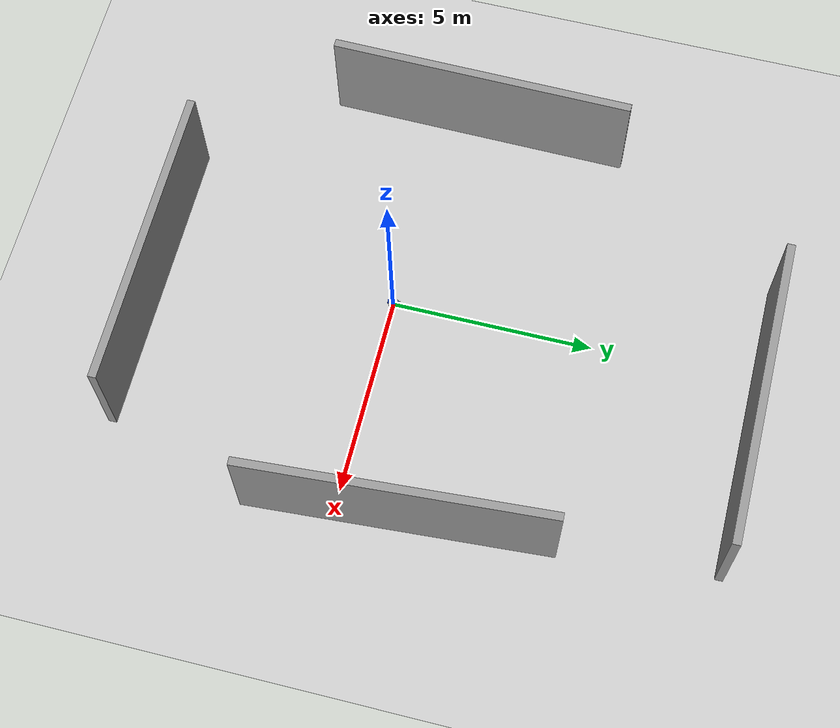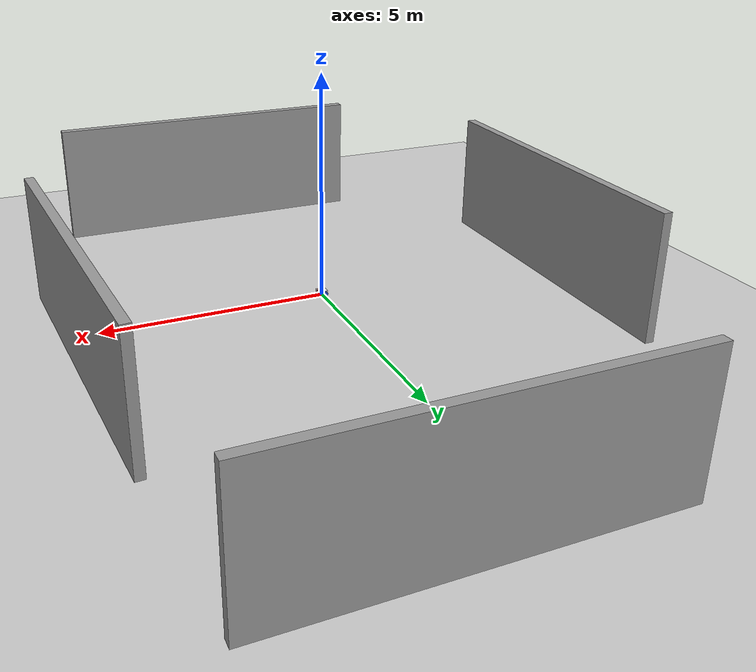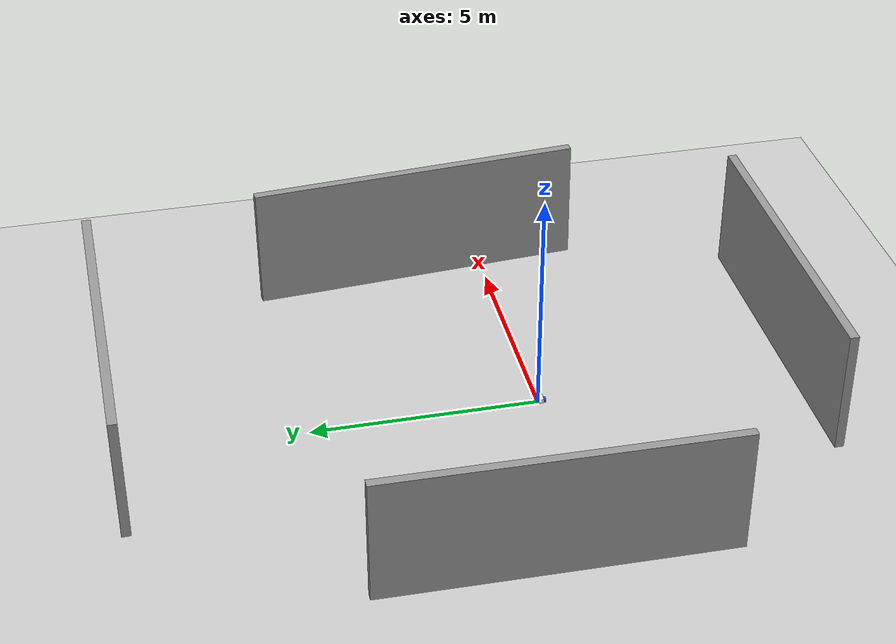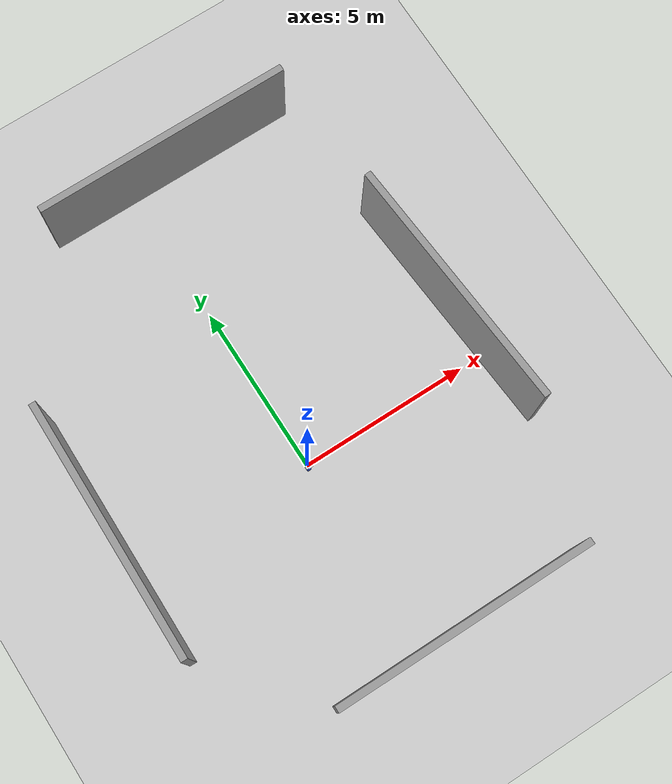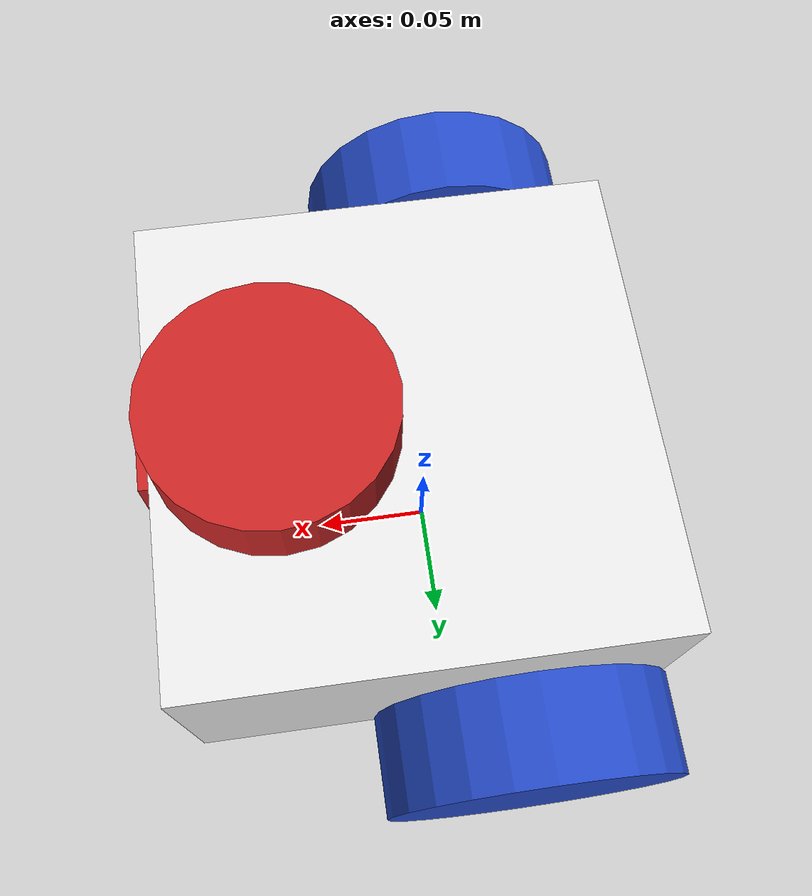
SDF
<sdf version="1.7">
 <world name="default">
  <light name="sun" type="directional">
   <pose>0 0 10 0 -0 0</pose>
   <diffuse>0.8 0.8 0.8 1</diffuse>
   <specular>0.2 0.2 0.2 1</specular>
   <attenuation>
    <range>1000</range>
    <constant>0.9</constant>
    <linear>0.01</linear>
    <quadratic>0.001</quadratic>
   </attenuation>
   <direction>-0.5 0.1 -0.9</direction>
   <spot><inner_angle>0</inner_angle><outer_angle>0</outer_angle><falloff>0</falloff></spot>
  </light>
  <model name="ground_plane">
   <static>1</static>
   <link name="link">
    <collision name="collision">
     <geometry><plane><normal>0 0 1</normal><size>100 100</size></plane></geometry>
     <surface><friction><ode><mu>100</mu><mu2>50</mu2></ode></friction></surface>
    </collision>
    <visual name="visual">
     <cast_shadows>0</cast_shadows>
     <geometry><plane><normal>0 0 1</normal><size>100 100</size></plane></geometry>
     <material>
      <script><uri>file://media/materials/scripts/gazebo.material</uri><name>Gazebo/Grey</name></script>
     </material>
    </visual>
   </link>
  </model>
  <gravity>0 0 -9.8</gravity>
  <magnetic_field>6e-06 2.3e-05 -4.2e-05</magnetic_field>
  <atmosphere type="adiabatic"/>
  <physics type="ode">
   <max_step_size>0.001</max_step_size>
   <real_time_factor>1</real_time_factor>
   <real_time_update_rate>1000</real_time_update_rate>
  </physics>
  <scene><ambient>0.4 0.4 0.4 1</ambient><background>0.7 0.7 0.7 1</background><shadows>1</shadows></scene>
  <audio><device>default</device></audio>
  <spherical_coordinates>
   <surface_model>EARTH_WGS84</surface_model>
   <latitude_deg>0</latitude_deg>
   <longitude_deg>0</longitude_deg>
   <elevation>0</elevation>
   <heading_deg>0</heading_deg>
  </spherical_coordinates>
  <model name="grey_wall_0">
   <static>1</static>
   <link name="link">
    <pose>0 0 1.4 0 -0 0</pose>
    <collision name="collision"><geometry><box><size>7.5 0.2 2.8</size></box></geometry></collision>
    <visual name="visual">
     <cast_shadows>0</cast_shadows>
     <geometry><box><size>7.5 0.2 2.8</size></box></geometry>
     <material>
      <script>
       <uri>model://grey_wall/materials/scripts</uri>
       <uri>model://grey_wall/materials/textures</uri>
       <name>vrc/grey_wall</name>
      </script>
     </material>
    </visual>
   </link>
   <pose>0.876801 -5.76507 0 0 -0 0</pose>
  </model>
  <model name="grey_wall_1">
   <static>1</static>
   <link name="link">
    <pose>0 0 1.4 0 -0 0</pose>
    <collision name="collision"><geometry><box><size>7.5 0.2 2.8</size></box></geometry></collision>
    <visual name="visual">
     <cast_shadows>0</cast_shadows>
     <geometry><box><size>7.5 0.2 2.8</size></box></geometry>
     <material>
      <script>
       <uri>model://grey_wall/materials/scripts</uri>
       <uri>model://grey_wall/materials/textures</uri>
       <name>vrc/grey_wall</name>
      </script>
     </material>
    </visual>
   </link>
   <pose>1.25 9.0622 0 0 -0 0</pose>
  </model>
  <model name="grey_wall_2">
   <static>1</static>
   <link name="link">
    <pose>0 0 1.4 0 -0 0</pose>
    <collision name="collision"><geometry><box><size>7.5 0.2 2.8</size></box></geometry></collision>
    <visual name="visual">
     <cast_shadows>0</cast_shadows>
     <geometry><box><size>7.5 0.2 2.8</size></box></geometry>
     <material>
      <script>
       <uri>model://grey_wall/materials/scripts</uri>
       <uri>model://grey_wall/materials/textures</uri>
       <name>vrc/grey_wall</name>
      </script>
     </material>
    </visual>
   </link>
   <pose>5.53287 1.54211 -3e-06 0.002854 0.00672 1.64155</pose>
  </model>
  <model name="grey_wall_3">
   <static>1</static>
   <link name="link">
    <pose>0 0 1.4 0 -0 0</pose>
    <collision name="collision"><geometry><box><size>7.5 0.2 2.8</size></box></geometry></collision>
    <visual name="visual">
     <cast_shadows>0</cast_shadows>
     <geometry><box><size>7.5 0.2 2.8</size></box></geometry>
     <material>
      <script>
       <uri>model://grey_wall/materials/scripts</uri>
       <uri>model://grey_wall/materials/textures</uri>
       <name>vrc/grey_wall</name>
      </script>
     </material>
    </visual>
   </link>
   <pose>-5.28748 0.936112 0 0 -0 1.55856</pose>
  </model>
  <model name="my_bot">
   <link name="base_link">
    <inertial>
     <pose>0.015857 0 0.051429 0 -0 0</pose>
     <mass>0.7</mass>
     <inertia>
      <ixx>0.00278538</ixx>
      <ixy>0</ixy>
      <ixz>2.08571e-05</ixz>
      <iyy>0.00323146</iyy>
      <iyz>0</iyz>
      <izz>0.00392206</izz>
     </inertia>
    </inertial>
    <collision name="base_link_fixed_joint_lump__chassis_collision">
     <pose>0 0 0.05 0 -0 0</pose>
     <geometry><box><size>0.2 0.2 0.1</size></box></geometry>
    </collision>
    <collision name="base_link_fixed_joint_lump__caster_wheel_collision_1">
     <pose>0.061 0 0 0 -0 0</pose>
     <geometry><sphere><radius>0.021</radius></sphere></geometry>
     <surface><friction><ode><mu>0.001</mu><mu2>0.001</mu2></ode></friction></surface>
    </collision>
    <collision name="base_link_fixed_joint_lump__laser_frame_collision_2">
     <pose>0.05 0 0.11 0 -0 0</pose>
     <geometry><cylinder><length>0.04</length><radius>0.05</radius></cylinder></geometry>
    </collision>
    <visual name="base_link_fixed_joint_lump__chassis_visual">
     <pose>0 0 0.05 0 -0 0</pose>
     <geometry><box><size>0.2 0.2 0.1</size></box></geometry>
     <material>
      <script><name>Gazebo/White</name><uri>file://media/materials/scripts/gazebo.material</uri></script>
     </material>
    </visual>
    <visual name="base_link_fixed_joint_lump__camera_link_visual_1">
     <pose>0.1 0 0.08 0 -0 0</pose>
     <geometry><box><size>0.01 0.03 0.03</size></box></geometry>
     <material>
      <script><name>Gazebo/Red</name><uri>file://media/materials/scripts/gazebo.material</uri></script>
     </material>
    </visual>
    <visual name="base_link_fixed_joint_lump__caster_wheel_visual_2">
     <pose>0.061 0 0 0 -0 0</pose>
     <geometry><sphere><radius>0.021</radius></sphere></geometry>
     <material>
      <script><name>Gazebo/Black</name><uri>file://media/materials/scripts/gazebo.material</uri></script>
     </material>
    </visual>
    <visual name="base_link_fixed_joint_lump__laser_frame_visual_3">
     <pose>0.05 0 0.11 0 -0 0</pose>
     <geometry><cylinder><length>0.04</length><radius>0.05</radius></cylinder></geometry>
     <material>
      <script><name>Gazebo/Red</name><uri>file://media/materials/scripts/gazebo.material</uri></script>
     </material>
    </visual>
    <sensor name="camera" type="camera">
     <update_rate>10</update_rate>
     <visualize>1</visualize>
     <camera>
      <horizontal_fov>1.089</horizontal_fov>
      <image><format>R8G8B8</format><width>640</width><height>480</height></image>
      <clip><near>0.05</near><far>8</far></clip>
     </camera>
     <plugin name="camera_controller" filename="libgazebo_ros_camera.so">
      <frame_name>camera_link_optical</frame_name>
     </plugin>
     <pose>0.1 0 0.08 0 -0 0</pose>
    </sensor>
    <sensor name="laser" type="ray">
     <update_rate>10</update_rate>
     <visualize>0</visualize>
     <ray>
      <scan>
       <horizontal>
        <samples>360</samples>
        <resolution>1</resolution>
        <min_angle>-3.14</min_angle>
        <max_angle>3.14</max_angle>
       </horizontal>
       <vertical><samples>1</samples><min_angle>0</min_angle><max_angle>0</max_angle></vertical>
      </scan>
      <range><min>0.3</min><max>12</max><resolution>0.01</resolution></range>
     </ray>
     <plugin name="laser_controller" filename="libgazebo_ros_ray_sensor.so">
      <ros><argument>~/out:=scan</argument></ros>
      <output_type>sensor_msgs/LaserScan</output_type>
      <frame_name>laser_frame</frame_name>
     </plugin>
     <pose>0.05 0 0.11 0 -0 0</pose>
    </sensor>
   </link>
   <joint name="left_wheel_joint" type="revolute">
    <pose relative_to="base_link">-0.035 0.125 0.04 -1.5708 0 0</pose>
    <parent>base_link</parent>
    <child>left_wheel</child>
    <axis>
     <xyz>0 0 1</xyz>
     <limit><lower>-1e+16</lower><upper>1e+16</upper></limit>
     <dynamics><spring_reference>0</spring_reference><spring_stiffness>0</spring_stiffness></dynamics>
    </axis>
   </joint>
   <link name="left_wheel">
    <pose relative_to="left_wheel_joint">0 0 0 0 -0 0</pose>
    <inertial>
     <mass>0.1</mass>
     <inertia>
      <ixx>0.000103333</ixx>
      <ixy>0</ixy>
      <ixz>0</ixz>
      <iyy>0.000103333</iyy>
      <iyz>0</iyz>
      <izz>0.00018</izz>
     </inertia>
    </inertial>
    <collision name="left_wheel_collision">
     <geometry><cylinder><length>0.04</length><radius>0.06</radius></cylinder></geometry>
    </collision>
    <visual name="left_wheel_visual">
     <geometry><cylinder><length>0.04</length><radius>0.06</radius></cylinder></geometry>
     <material>
      <script><name>Gazebo/Blue</name><uri>file://media/materials/scripts/gazebo.material</uri></script>
     </material>
    </visual>
   </link>
   <joint name="right_wheel_joint" type="revolute">
    <pose relative_to="base_link">-0.035 -0.125 0.04 1.5708 -0 0</pose>
    <parent>base_link</parent>
    <child>right_wheel</child>
    <axis>
     <xyz>0 0 -1</xyz>
     <limit><lower>-1e+16</lower><upper>1e+16</upper></limit>
     <dynamics><spring_reference>0</spring_reference><spring_stiffness>0</spring_stiffness></dynamics>
    </axis>
   </joint>
   <link name="right_wheel">
    <pose relative_to="right_wheel_joint">0 0 0 0 -0 0</pose>
    <inertial>
     <mass>0.1</mass>
     <inertia>
      <ixx>0.000103333</ixx>
      <ixy>0</ixy>
      <ixz>0</ixz>
      <iyy>0.000103333</iyy>
      <iyz>0</iyz>
      <izz>0.00018</izz>
     </inertia>
    </inertial>
    <collision name="right_wheel_collision">
     <geometry><cylinder><length>0.04</length><radius>0.06</radius></cylinder></geometry>
    </collision>
    <visual name="right_wheel_visual">
     <geometry><cylinder><length>0.04</length><radius>0.06</radius></cylinder></geometry>
     <material>
      <script><name>Gazebo/Blue</name><uri>file://media/materials/scripts/gazebo.material</uri></script>
     </material>
    </visual>
   </link>
   <static>0</static>
   <plugin name="diff_drive" filename="libgazebo_ros_diff_drive.so">
    <left_joint>left_wheel_joint</left_joint>
    <right_joint>right_wheel_joint</right_joint>
    <wheel_separation>0.25</wheel_separation>
    <wheel_diameter>0.12</wheel_diameter>
    <max_wheel_torque>200</max_wheel_torque>
    <max_wheel_acceleration>10.0</max_wheel_acceleration>
    <odometry_frame>odom</odometry_frame>
    <robot_base_frame>base_link</robot_base_frame>
    <publish_odom>1</publish_odom>
    <publish_odom_tf>1</publish_odom_tf>
    <publish_wheel_tf>1</publish_wheel_tf>
   </plugin>
   <pose>0.011818 5e-05 0.020366 -0 -0.010392 0.000498</pose>
  </model>
 </world>
</sdf>
